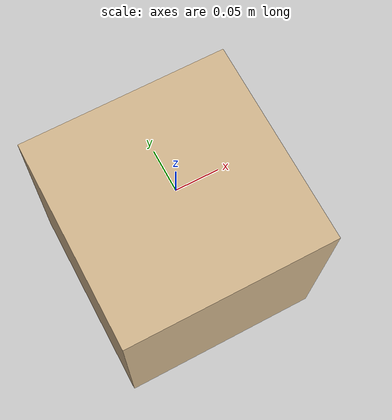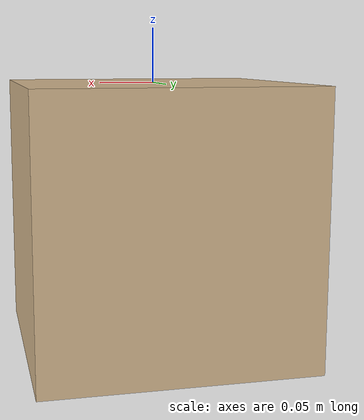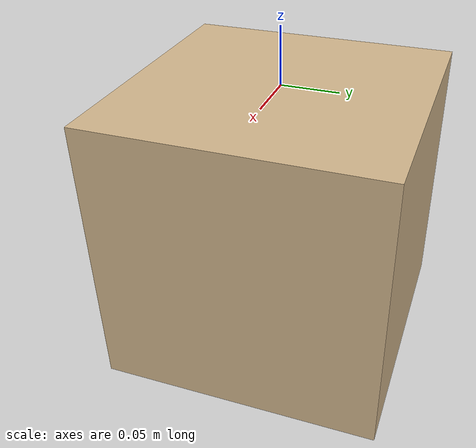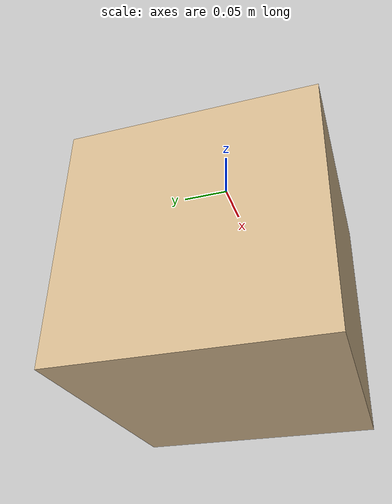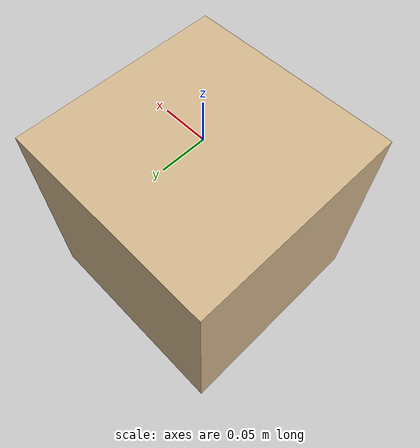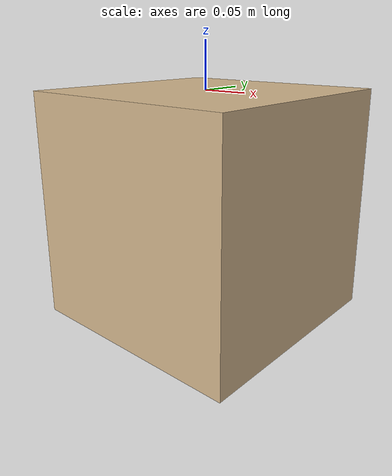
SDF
<?xml version="1.0" encoding="UTF-8"?>
<sdf version='1.9'>
  <model name="payload">
    <enable_wind>true</enable_wind>
    <link name="base_link">
      <pose>0 0 -0.125 0 0 0</pose>

      <collision name="base_link_collision">
        <geometry>
          <box>
            <size>0.25 0.25 0.25</size>
          </box>
        </geometry>
      </collision>

      <visual name="base_link_visual">
        <geometry>
          <box>
            <size>0.25 0.25 0.25</size>
          </box>
        </geometry>
        <material>
          <ambient>0.82 0.71 0.55 1</ambient>
          <diffuse>0.82 0.71 0.55 1</diffuse>
          <specular>0.3 0.3 0.3 1</specular>
        </material>
      </visual>

      <inertial>
        <mass>1.0</mass>
        <inertia>
          <ixx>0.010417</ixx>
          <iyy>0.010417</iyy>
          <izz>0.010417</izz>
          <ixy>0</ixy>
          <ixz>0</ixz>
          <iyz>0</iyz>
        </inertia>
      </inertial>

    </link>
  </model>
</sdf>
